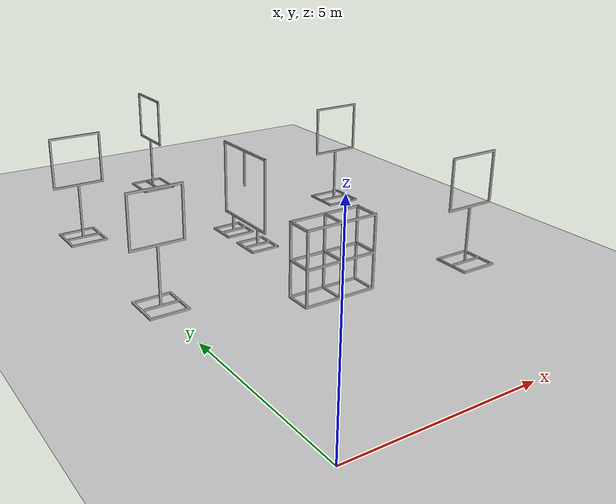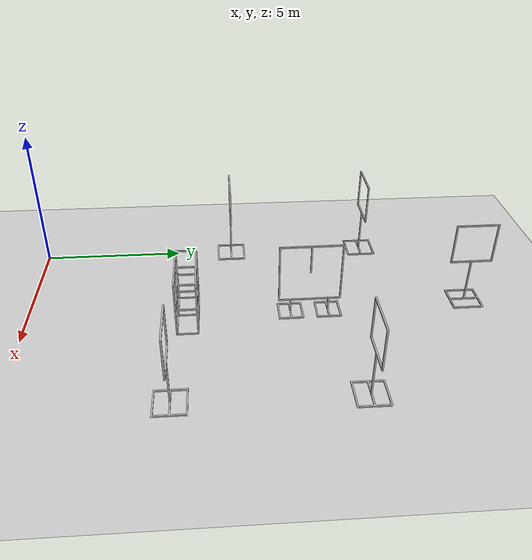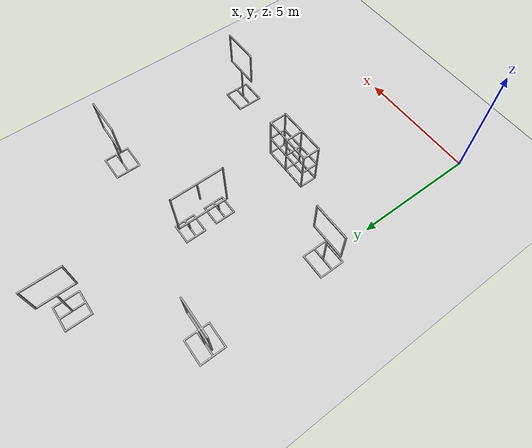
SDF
<sdf version="1.6">
 <world name="default">
  <light name="sun" type="directional">
   <pose>0 0 10 0 -0 0</pose>
   <diffuse>0.8 0.8 0.8 1</diffuse>
   <specular>0.2 0.2 0.2 1</specular>
   <attenuation>
    <range>1000</range>
    <constant>0.9</constant>
    <linear>0.01</linear>
    <quadratic>0.001</quadratic>
   </attenuation>
   <direction>-0.5 0.1 -0.9</direction>
  </light>
  <model name="ground_plane">
   <static>1</static>
   <link name="link">
    <collision name="collision">
     <geometry><plane><normal>0 0 1</normal><size>100 100</size></plane></geometry>
     <surface><friction><ode><mu>100</mu><mu2>50</mu2></ode></friction></surface>
    </collision>
    <visual name="visual">
     <cast_shadows>0</cast_shadows>
     <geometry><plane><normal>0 0 1</normal><size>100 100</size></plane></geometry>
     <material>
      <script><uri>file://media/materials/scripts/gazebo.material</uri><name>Gazebo/Grey</name></script>
     </material>
    </visual>
   </link>
  </model>
  <gravity>0 0 -9.8</gravity>
  <magnetic_field>6e-06 2.3e-05 -4.2e-05</magnetic_field>
  <atmosphere type="adiabatic"/>
  <physics name="default_physics" default="0" type="ode">
   <max_step_size>0.001</max_step_size>
   <real_time_factor>1</real_time_factor>
   <real_time_update_rate>1000</real_time_update_rate>
  </physics>
  <scene><ambient>0.4 0.4 0.4 1</ambient><background>0.7 0.7 0.7 1</background><shadows>1</shadows></scene>
  <spherical_coordinates>
   <surface_model>EARTH_WGS84</surface_model>
   <latitude_deg>51.9906361</latitude_deg>
   <longitude_deg>4.3767874</longitude_deg>
   <elevation>45.110</elevation>
   <heading_deg>180</heading_deg>
  </spherical_coordinates>
  <model name="dronerace gate 2018">
   <static>1</static>
   <pose>0.053049 7.04868 -0 0 -0 0</pose>
   <link name="dronerace gate 2018">
    <visual name="gate">
     <geometry><mesh><uri>model://dronerace_gate_2018/normal_gate_2018.dae</uri></mesh></geometry>
    </visual>
    <collision name="gate_collision">
     <geometry><mesh><uri>model://dronerace_gate_2018/normal_gate_2018.dae</uri></mesh></geometry>
    </collision>
   </link>
  </model>
  <model name="dronerace gate 2018_0">
   <static>1</static>
   <pose>0.048314 12.1158 0 0 -0 0</pose>
   <link name="dronerace gate 2018">
    <visual name="gate">
     <geometry><mesh><uri>model://dronerace_gate_2018/normal_gate_2018.dae</uri></mesh></geometry>
    </visual>
    <collision name="gate_collision">
     <geometry><mesh><uri>model://dronerace_gate_2018/normal_gate_2018.dae</uri></mesh></geometry>
    </collision>
   </link>
  </model>
  <model name="dronerace gate 2018_1">
   <static>1</static>
   <pose>3.67542 15.16 0 0 0 -1.56757</pose>
   <link name="dronerace gate 2018">
    <visual name="gate">
     <geometry><mesh><uri>model://dronerace_gate_2018/normal_gate_2018.dae</uri></mesh></geometry>
    </visual>
    <collision name="gate_collision">
     <geometry><mesh><uri>model://dronerace_gate_2018/normal_gate_2018.dae</uri></mesh></geometry>
    </collision>
   </link>
  </model>
  <model name="dronerace gate 2018_2">
   <static>1</static>
   <pose>8.05828 10.8931 0 0 -0 0</pose>
   <link name="dronerace gate 2018">
    <visual name="gate">
     <geometry><mesh><uri>model://dronerace_gate_2018/normal_gate_2018.dae</uri></mesh></geometry>
    </visual>
    <collision name="gate_collision">
     <geometry><mesh><uri>model://dronerace_gate_2018/normal_gate_2018.dae</uri></mesh></geometry>
    </collision>
   </link>
  </model>
  <model name="dronerace gate 2018_3">
   <static>1</static>
   <pose>8.01982 4.99638 0 0 -0 0</pose>
   <link name="dronerace gate 2018">
    <visual name="gate">
     <geometry><mesh><uri>model://dronerace_gate_2018/normal_gate_2018.dae</uri></mesh></geometry>
    </visual>
    <collision name="gate_collision">
     <geometry><mesh><uri>model://dronerace_gate_2018/normal_gate_2018.dae</uri></mesh></geometry>
    </collision>
   </link>
  </model>
  <model name="dronerace gate 2018_4">
   <static>1</static>
   <pose>3.93309 5.09612 0 0 -0 0</pose>
   <link name="dronerace gate 2018">
    <visual name="gate">
     <geometry><mesh><uri>model://dronerace_junglegate_2018/jungle_gate_2018.dae</uri></mesh></geometry>
    </visual>
    <collision name="gate_collision">
     <geometry><mesh><uri>model://dronerace_junglegate_2018/jungle_gate_2018.dae</uri></mesh></geometry>
    </collision>
   </link>
  </model>
  <model name="dronerace dynamic gate 2018">
   <static>1</static>
   <pose>3.9491 9.60242 0 0 -0 1.57829</pose>
   <link name="dronerace dynamic gate 2018">
    <visual name="gate">
     <geometry><mesh><uri>model://dronerace_dynamicgate_2018/dynamic_gate_2018.dae</uri></mesh></geometry>
    </visual>
    <collision name="gate_collision">
     <geometry><mesh><uri>model://dronerace_dynamicgate_2018/dynamic_gate_2018.dae</uri></mesh></geometry>
    </collision>
   </link>
  </model>
 </world>
</sdf>
